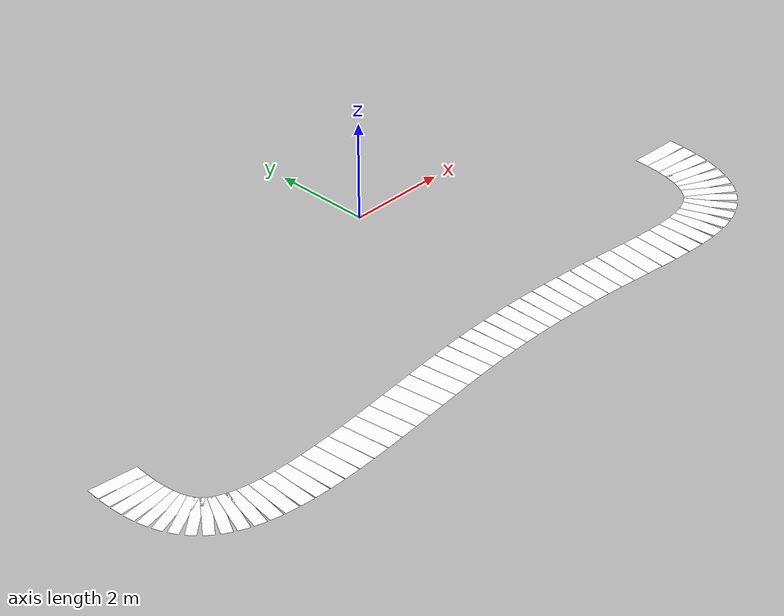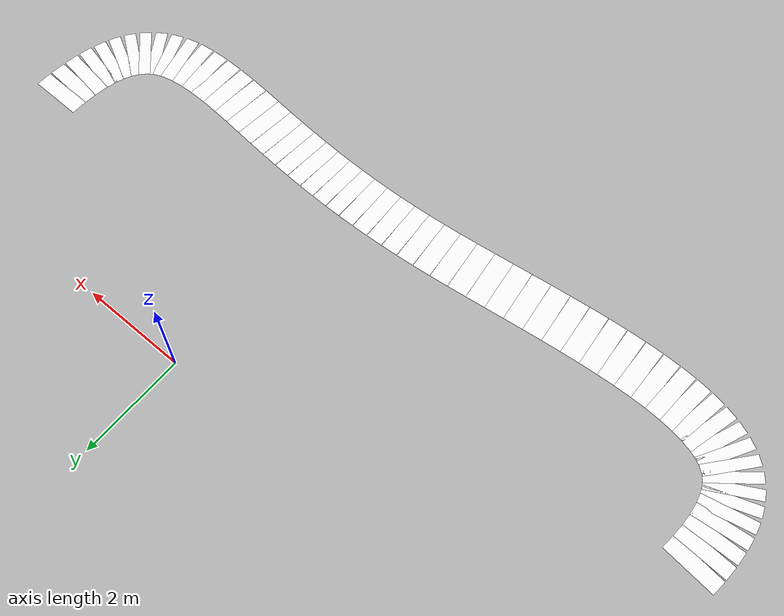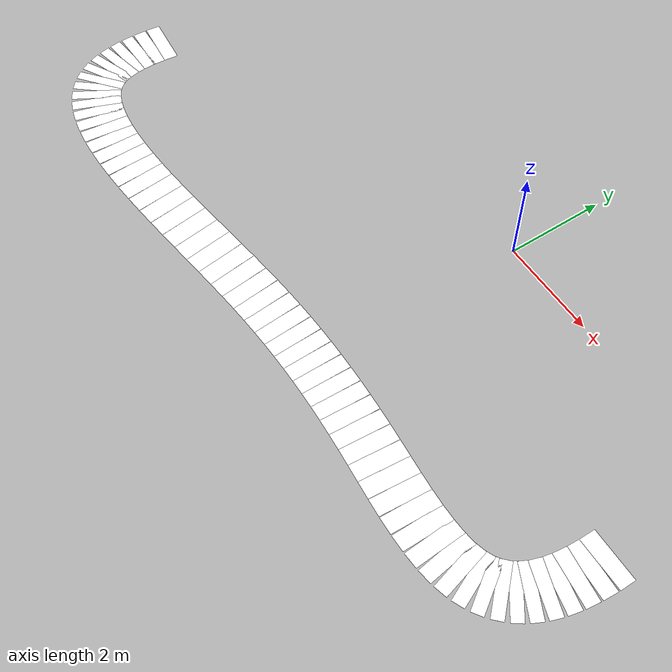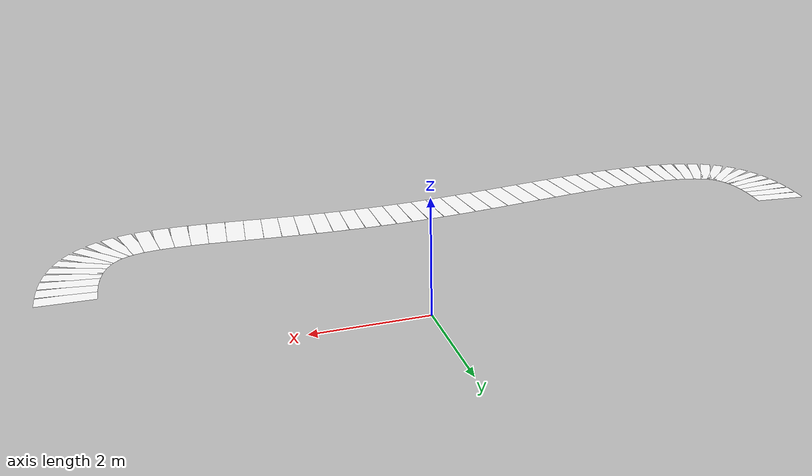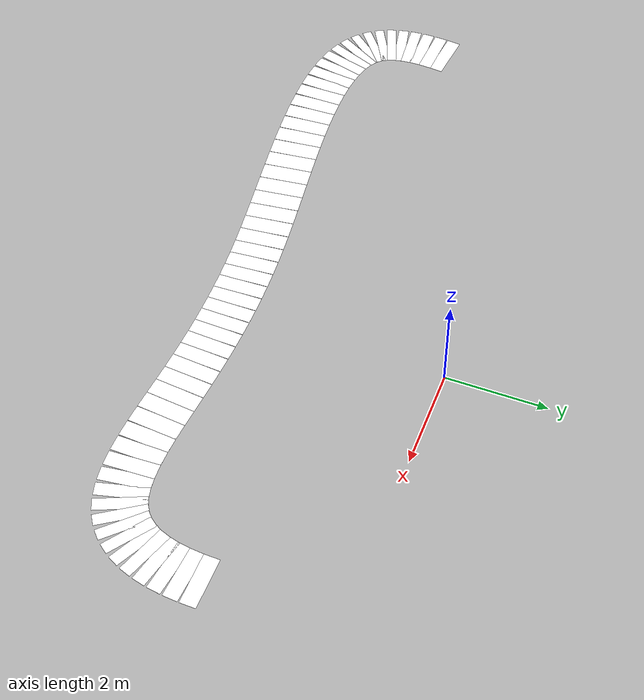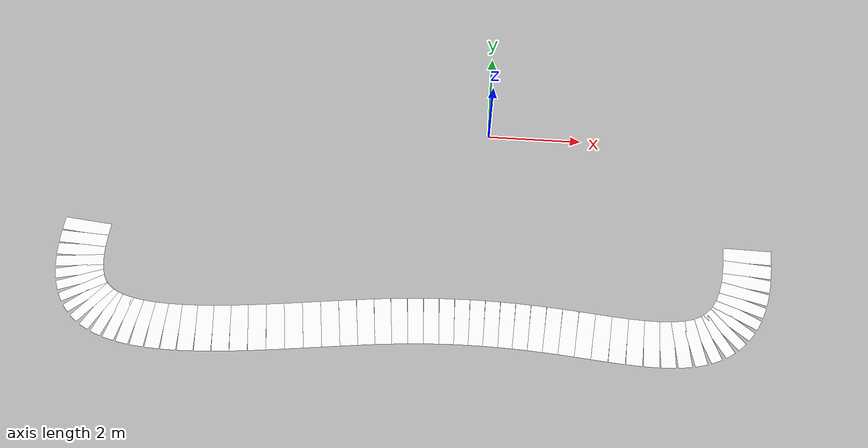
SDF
<sdf version="1.6">
 <model name="road_model">
  <model name="road_section_37">
   <static>1</static>
   <link name="road_link">
    <visual name="road_visual">
     <geometry><box><size>0.314492 1 0.0001</size></box></geometry>
     <material>
      <ambient>0.8 0.8 0.8 1</ambient>
      <diffuse>1 1 1 1</diffuse>
      <specular>0 0 0 1</specular>
      <pbr>
       <metal>
        <albedo_map>model://road_material/materials/textures/road_texture.jpg</albedo_map>
        <metalness>0</metalness>
        <roughness>0.8</roughness>
       </metal>
      </pbr>
     </material>
    </visual>
    <collision name="road_collision"><geometry><box><size>0.314492 1 0.0001</size></box></geometry></collision>
   </link>
   <pose>5.53561 -2.51377 0 0 0 -1.58711</pose>
  </model>
  <model name="road_section_38">
   <static>1</static>
   <link name="road_link">
    <visual name="road_visual">
     <geometry><box><size>0.296638 1 0.0001</size></box></geometry>
     <material>
      <ambient>0.8 0.8 0.8 1</ambient>
      <diffuse>1 1 1 1</diffuse>
      <specular>0 0 0 1</specular>
      <pbr>
       <metal>
        <albedo_map>model://road_material/materials/textures/road_texture.jpg</albedo_map>
        <metalness>0</metalness>
        <roughness>0.8</roughness>
       </metal>
      </pbr>
     </material>
    </visual>
    <collision name="road_collision"><geometry><box><size>0.296638 1 0.0001</size></box></geometry></collision>
   </link>
   <pose>5.52234 -2.81892 0 0 0 -1.64307</pose>
  </model>
  <model name="road_section_39">
   <static>1</static>
   <link name="road_link">
    <visual name="road_visual">
     <geometry><box><size>0.278683 1 0.0001</size></box></geometry>
     <material>
      <ambient>0.8 0.8 0.8 1</ambient>
      <diffuse>1 1 1 1</diffuse>
      <specular>0 0 0 1</specular>
      <pbr>
       <metal>
        <albedo_map>model://road_material/materials/textures/road_texture.jpg</albedo_map>
        <metalness>0</metalness>
        <roughness>0.8</roughness>
       </metal>
      </pbr>
     </material>
    </visual>
    <collision name="road_collision"><geometry><box><size>0.278683 1 0.0001</size></box></geometry></collision>
   </link>
   <pose>5.4918 -3.10478 0 0 0 -1.71356</pose>
  </model>
  <model name="road_section_40">
   <static>1</static>
   <link name="road_link">
    <visual name="road_visual">
     <geometry><box><size>0.261342 1 0.0001</size></box></geometry>
     <material>
      <ambient>0.8 0.8 0.8 1</ambient>
      <diffuse>1 1 1 1</diffuse>
      <specular>0 0 0 1</specular>
      <pbr>
       <metal>
        <albedo_map>model://road_material/materials/textures/road_texture.jpg</albedo_map>
        <metalness>0</metalness>
        <roughness>0.8</roughness>
       </metal>
      </pbr>
     </material>
    </visual>
    <collision name="road_collision"><geometry><box><size>0.261342 1 0.0001</size></box></geometry></collision>
   </link>
   <pose>5.44207 -3.3699 0 0 0 -1.80175</pose>
  </model>
  <model name="road_section_41">
   <static>1</static>
   <link name="road_link">
    <visual name="road_visual">
     <geometry><box><size>0.245602 1 0.0001</size></box></geometry>
     <material>
      <ambient>0.8 0.8 0.8 1</ambient>
      <diffuse>1 1 1 1</diffuse>
      <specular>0 0 0 1</specular>
      <pbr>
       <metal>
        <albedo_map>model://road_material/materials/textures/road_texture.jpg</albedo_map>
        <metalness>0</metalness>
        <roughness>0.8</roughness>
       </metal>
      </pbr>
     </material>
    </visual>
    <collision name="road_collision"><geometry><box><size>0.245602 1 0.0001</size></box></geometry></collision>
   </link>
   <pose>5.37118 -3.61287 0 0 0 -1.91095</pose>
  </model>
  <model name="road_section_42">
   <static>1</static>
   <link name="road_link">
    <visual name="road_visual">
     <geometry><box><size>0.232765 1 0.0001</size></box></geometry>
     <material>
      <ambient>0.8 0.8 0.8 1</ambient>
      <diffuse>1 1 1 1</diffuse>
      <specular>0 0 0 1</specular>
      <pbr>
       <metal>
        <albedo_map>model://road_material/materials/textures/road_texture.jpg</albedo_map>
        <metalness>0</metalness>
        <roughness>0.8</roughness>
       </metal>
      </pbr>
     </material>
    </visual>
    <collision name="road_collision"><geometry><box><size>0.232765 1 0.0001</size></box></geometry></collision>
   </link>
   <pose>5.27721 -3.83225 0 0 0 -2.04362</pose>
  </model>
  <model name="road_section_43">
   <static>1</static>
   <link name="road_link">
    <visual name="road_visual">
     <geometry><box><size>0.224424 1 0.0001</size></box></geometry>
     <material>
      <ambient>0.8 0.8 0.8 1</ambient>
      <diffuse>1 1 1 1</diffuse>
      <specular>0 0 0 1</specular>
      <pbr>
       <metal>
        <albedo_map>model://road_material/materials/textures/road_texture.jpg</albedo_map>
        <metalness>0</metalness>
        <roughness>0.8</roughness>
       </metal>
      </pbr>
     </material>
    </visual>
    <collision name="road_collision"><geometry><box><size>0.224424 1 0.0001</size></box></geometry></collision>
   </link>
   <pose>5.15821 -4.02661 0 0 0 -2.19962</pose>
  </model>
  <model name="road_section_44">
   <static>1</static>
   <link name="road_link">
    <visual name="road_visual">
     <geometry><box><size>0.22227 1 0.0001</size></box></geometry>
     <material>
      <ambient>0.8 0.8 0.8 1</ambient>
      <diffuse>1 1 1 1</diffuse>
      <specular>0 0 0 1</specular>
      <pbr>
       <metal>
        <albedo_map>model://road_material/materials/textures/road_texture.jpg</albedo_map>
        <metalness>0</metalness>
        <roughness>0.8</roughness>
       </metal>
      </pbr>
     </material>
    </visual>
    <collision name="road_collision"><geometry><box><size>0.22227 1 0.0001</size></box></geometry></collision>
   </link>
   <pose>5.01223 -4.19453 0 0 0 -2.37406</pose>
  </model>
  <model name="road_section_45">
   <static>1</static>
   <link name="road_link">
    <visual name="road_visual">
     <geometry><box><size>0.22771 1 0.0001</size></box></geometry>
     <material>
      <ambient>0.8 0.8 0.8 1</ambient>
      <diffuse>1 1 1 1</diffuse>
      <specular>0 0 0 1</specular>
      <pbr>
       <metal>
        <albedo_map>model://road_material/materials/textures/road_texture.jpg</albedo_map>
        <metalness>0</metalness>
        <roughness>0.8</roughness>
       </metal>
      </pbr>
     </material>
    </visual>
    <collision name="road_collision"><geometry><box><size>0.22771 1 0.0001</size></box></geometry></collision>
   </link>
   <pose>4.83734 -4.33457 0 0 0 -2.55656</pose>
  </model>
  <model name="road_section_46">
   <static>1</static>
   <link name="road_link">
    <visual name="road_visual">
     <geometry><box><size>0.241461 1 0.0001</size></box></geometry>
     <material>
      <ambient>0.8 0.8 0.8 1</ambient>
      <diffuse>1 1 1 1</diffuse>
      <specular>0 0 0 1</specular>
      <pbr>
       <metal>
        <albedo_map>model://road_material/materials/textures/road_texture.jpg</albedo_map>
        <metalness>0</metalness>
        <roughness>0.8</roughness>
       </metal>
      </pbr>
     </material>
    </visual>
    <collision name="road_collision"><geometry><box><size>0.241461 1 0.0001</size></box></geometry></collision>
   </link>
   <pose>4.63158 -4.44531 0 0 0 -2.73393</pose>
  </model>
  <model name="road_section_47">
   <static>1</static>
   <link name="road_link">
    <visual name="road_visual">
     <geometry><box><size>0.262674 1 0.0001</size></box></geometry>
     <material>
      <ambient>0.8 0.8 0.8 1</ambient>
      <diffuse>1 1 1 1</diffuse>
      <specular>0 0 0 1</specular>
      <pbr>
       <metal>
        <albedo_map>model://road_material/materials/textures/road_texture.jpg</albedo_map>
        <metalness>0</metalness>
        <roughness>0.8</roughness>
       </metal>
      </pbr>
     </material>
    </visual>
    <collision name="road_collision"><geometry><box><size>0.262674 1 0.0001</size></box></geometry></collision>
   </link>
   <pose>4.3935 -4.52569 0 0 0 -2.89138</pose>
  </model>
  <model name="road_section_48">
   <static>1</static>
   <link name="road_link">
    <visual name="road_visual">
     <geometry><box><size>0.285824 1 0.0001</size></box></geometry>
     <material>
      <ambient>0.8 0.8 0.8 1</ambient>
      <diffuse>1 1 1 1</diffuse>
      <specular>0 0 0 1</specular>
      <pbr>
       <metal>
        <albedo_map>model://road_material/materials/textures/road_texture.jpg</albedo_map>
        <metalness>0</metalness>
        <roughness>0.8</roughness>
       </metal>
      </pbr>
     </material>
    </visual>
    <collision name="road_collision"><geometry><box><size>0.285824 1 0.0001</size></box></geometry></collision>
   </link>
   <pose>4.12458 -4.57702 0 0 0 -3.00963</pose>
  </model>
  <model name="road_section_49">
   <static>1</static>
   <link name="road_link">
    <visual name="road_visual">
     <geometry><box><size>0.306955 1 0.0001</size></box></geometry>
     <material>
      <ambient>0.8 0.8 0.8 1</ambient>
      <diffuse>1 1 1 1</diffuse>
      <specular>0 0 0 1</specular>
      <pbr>
       <metal>
        <albedo_map>model://road_material/materials/textures/road_texture.jpg</albedo_map>
        <metalness>0</metalness>
        <roughness>0.8</roughness>
       </metal>
      </pbr>
     </material>
    </visual>
    <collision name="road_collision"><geometry><box><size>0.306955 1 0.0001</size></box></geometry></collision>
   </link>
   <pose>3.82961 -4.60318 0 0 0 -3.09366</pose>
  </model>
  <model name="road_section_50">
   <static>1</static>
   <link name="road_link">
    <visual name="road_visual">
     <geometry><box><size>0.324306 1 0.0001</size></box></geometry>
     <material>
      <ambient>0.8 0.8 0.8 1</ambient>
      <diffuse>1 1 1 1</diffuse>
      <specular>0 0 0 1</specular>
      <pbr>
       <metal>
        <albedo_map>model://road_material/materials/textures/road_texture.jpg</albedo_map>
        <metalness>0</metalness>
        <roughness>0.8</roughness>
       </metal>
      </pbr>
     </material>
    </visual>
    <collision name="road_collision"><geometry><box><size>0.324306 1 0.0001</size></box></geometry></collision>
   </link>
   <pose>3.51417 -4.6087 0 0 -0 3.13029</pose>
  </model>
  <model name="road_section_51">
   <static>1</static>
   <link name="road_link">
    <visual name="road_visual">
     <geometry><box><size>0.336842 1 0.0001</size></box></geometry>
     <material>
      <ambient>0.8 0.8 0.8 1</ambient>
      <diffuse>1 1 1 1</diffuse>
      <specular>0 0 0 1</specular>
      <pbr>
       <metal>
        <albedo_map>model://road_material/materials/textures/road_texture.jpg</albedo_map>
        <metalness>0</metalness>
        <roughness>0.8</roughness>
       </metal>
      </pbr>
     </material>
    </visual>
    <collision name="road_collision"><geometry><box><size>0.336842 1 0.0001</size></box></geometry></collision>
   </link>
   <pose>3.18383 -4.59811 0 0 -0 3.08959</pose>
  </model>
  <model name="road_section_52">
   <static>1</static>
   <link name="road_link">
    <visual name="road_visual">
     <geometry><box><size>0.343953 1 0.0001</size></box></geometry>
     <material>
      <ambient>0.8 0.8 0.8 1</ambient>
      <diffuse>1 1 1 1</diffuse>
      <specular>0 0 0 1</specular>
      <pbr>
       <metal>
        <albedo_map>model://road_material/materials/textures/road_texture.jpg</albedo_map>
        <metalness>0</metalness>
        <roughness>0.8</roughness>
       </metal>
      </pbr>
     </material>
    </visual>
    <collision name="road_collision"><geometry><box><size>0.343953 1 0.0001</size></box></geometry></collision>
   </link>
   <pose>2.84418 -4.57594 0 0 -0 3.06353</pose>
  </model>
  <model name="road_section_53">
   <static>1</static>
   <link name="road_link">
    <visual name="road_visual">
     <geometry><box><size>0.345293 1 0.0001</size></box></geometry>
     <material>
      <ambient>0.8 0.8 0.8 1</ambient>
      <diffuse>1 1 1 1</diffuse>
      <specular>0 0 0 1</specular>
      <pbr>
       <metal>
        <albedo_map>model://road_material/materials/textures/road_texture.jpg</albedo_map>
        <metalness>0</metalness>
        <roughness>0.8</roughness>
       </metal>
      </pbr>
     </material>
    </visual>
    <collision name="road_collision"><geometry><box><size>0.345293 1 0.0001</size></box></geometry></collision>
   </link>
   <pose>2.50081 -4.54673 0 0 -0 3.04992</pose>
  </model>
  <model name="road_section_54">
   <static>1</static>
   <link name="road_link">
    <visual name="road_visual">
     <geometry><box><size>0.340693 1 0.0001</size></box></geometry>
     <material>
      <ambient>0.8 0.8 0.8 1</ambient>
      <diffuse>1 1 1 1</diffuse>
      <specular>0 0 0 1</specular>
      <pbr>
       <metal>
        <albedo_map>model://road_material/materials/textures/road_texture.jpg</albedo_map>
        <metalness>0</metalness>
        <roughness>0.8</roughness>
       </metal>
      </pbr>
     </material>
    </visual>
    <collision name="road_collision"><geometry><box><size>0.340693 1 0.0001</size></box></geometry></collision>
   </link>
   <pose>2.15929 -4.51499 0 0 -0 3.04793</pose>
  </model>
  <model name="road_section_55">
   <static>1</static>
   <link name="road_link">
    <visual name="road_visual">
     <geometry><box><size>0.331522 1 0.0001</size></box></geometry>
     <material>
      <ambient>0.8 0.8 0.8 1</ambient>
      <diffuse>1 1 1 1</diffuse>
      <specular>0 0 0 1</specular>
      <pbr>
       <metal>
        <albedo_map>model://road_material/materials/textures/road_texture.jpg</albedo_map>
        <metalness>0</metalness>
        <roughness>0.8</roughness>
       </metal>
      </pbr>
     </material>
    </visual>
    <collision name="road_collision"><geometry><box><size>0.331522 1 0.0001</size></box></geometry></collision>
   </link>
   <pose>1.82453 -4.48487 0 0 -0 3.05587</pose>
  </model>
  <model name="road_section_56">
   <static>1</static>
   <link name="road_link">
    <visual name="road_visual">
     <geometry><box><size>0.322907 1 0.0001</size></box></geometry>
     <material>
      <ambient>0.8 0.8 0.8 1</ambient>
      <diffuse>1 1 1 1</diffuse>
      <specular>0 0 0 1</specular>
      <pbr>
       <metal>
        <albedo_map>model://road_material/materials/textures/road_texture.jpg</albedo_map>
        <metalness>0</metalness>
        <roughness>0.8</roughness>
       </metal>
      </pbr>
     </material>
    </visual>
    <collision name="road_collision"><geometry><box><size>0.322907 1 0.0001</size></box></geometry></collision>
   </link>
   <pose>1.49838 -4.45864 0 0 -0 3.06697</pose>
  </model>
  <model name="road_section_57">
   <static>1</static>
   <link name="road_link">
    <visual name="road_visual">
     <geometry><box><size>0.316027 1 0.0001</size></box></geometry>
     <material>
      <ambient>0.8 0.8 0.8 1</ambient>
      <diffuse>1 1 1 1</diffuse>
      <specular>0 0 0 1</specular>
      <pbr>
       <metal>
        <albedo_map>model://road_material/materials/textures/road_texture.jpg</albedo_map>
        <metalness>0</metalness>
        <roughness>0.8</roughness>
       </metal>
      </pbr>
     </material>
    </visual>
    <collision name="road_collision"><geometry><box><size>0.316027 1 0.0001</size></box></geometry></collision>
   </link>
   <pose>1.17966 -4.43681 0 0 -0 3.07956</pose>
  </model>
  <model name="road_section_58">
   <static>1</static>
   <link name="road_link">
    <visual name="road_visual">
     <geometry><box><size>0.310894 1 0.0001</size></box></geometry>
     <material>
      <ambient>0.8 0.8 0.8 1</ambient>
      <diffuse>1 1 1 1</diffuse>
      <specular>0 0 0 1</specular>
      <pbr>
       <metal>
        <albedo_map>model://road_material/materials/textures/road_texture.jpg</albedo_map>
        <metalness>0</metalness>
        <roughness>0.8</roughness>
       </metal>
      </pbr>
     </material>
    </visual>
    <collision name="road_collision"><geometry><box><size>0.310894 1 0.0001</size></box></geometry></collision>
   </link>
   <pose>0.866687 -4.41955 0 0 -0 3.09353</pose>
  </model>
  <model name="road_section_59">
   <static>1</static>
   <link name="road_link">
    <visual name="road_visual">
     <geometry><box><size>0.307523 1 0.0001</size></box></geometry>
     <material>
      <ambient>0.8 0.8 0.8 1</ambient>
      <diffuse>1 1 1 1</diffuse>
      <specular>0 0 0 1</specular>
      <pbr>
       <metal>
        <albedo_map>model://road_material/materials/textures/road_texture.jpg</albedo_map>
        <metalness>0</metalness>
        <roughness>0.8</roughness>
       </metal>
      </pbr>
     </material>
    </visual>
    <collision name="road_collision"><geometry><box><size>0.307523 1 0.0001</size></box></geometry></collision>
   </link>
   <pose>0.557741 -4.40702 0 0 -0 3.1087</pose>
  </model>
  <model name="road_section_60">
   <static>1</static>
   <link name="road_link">
    <visual name="road_visual">
     <geometry><box><size>0.305927 1 0.0001</size></box></geometry>
     <material>
      <ambient>0.8 0.8 0.8 1</ambient>
      <diffuse>1 1 1 1</diffuse>
      <specular>0 0 0 1</specular>
      <pbr>
       <metal>
        <albedo_map>model://road_material/materials/textures/road_texture.jpg</albedo_map>
        <metalness>0</metalness>
        <roughness>0.8</roughness>
       </metal>
      </pbr>
     </material>
    </visual>
    <collision name="road_collision"><geometry><box><size>0.305927 1 0.0001</size></box></geometry></collision>
   </link>
   <pose>0.251121 -4.39941 0 0 -0 3.12487</pose>
  </model>
  <model name="road_section_61">
   <static>1</static>
   <link name="road_link">
    <visual name="road_visual">
     <geometry><box><size>0.306117 1 0.0001</size></box></geometry>
     <material>
      <ambient>0.8 0.8 0.8 1</ambient>
      <diffuse>1 1 1 1</diffuse>
      <specular>0 0 0 1</specular>
      <pbr>
       <metal>
        <albedo_map>model://road_material/materials/textures/road_texture.jpg</albedo_map>
        <metalness>0</metalness>
        <roughness>0.8</roughness>
       </metal>
      </pbr>
     </material>
    </visual>
    <collision name="road_collision"><geometry><box><size>0.306117 1 0.0001</size></box></geometry></collision>
   </link>
   <pose>-0.05488 -4.39687 0 0 0 -3.14143</pose>
  </model>
  <model name="road_section_62">
   <static>1</static>
   <link name="road_link">
    <visual name="road_visual">
     <geometry><box><size>0.308103 1 0.0001</size></box></geometry>
     <material>
      <ambient>0.8 0.8 0.8 1</ambient>
      <diffuse>1 1 1 1</diffuse>
      <specular>0 0 0 1</specular>
      <pbr>
       <metal>
        <albedo_map>model://road_material/materials/textures/road_texture.jpg</albedo_map>
        <metalness>0</metalness>
        <roughness>0.8</roughness>
       </metal>
      </pbr>
     </material>
    </visual>
    <collision name="road_collision"><geometry><box><size>0.308103 1 0.0001</size></box></geometry></collision>
   </link>
   <pose>-0.361966 -4.39959 0 0 0 -3.12411</pose>
  </model>
  <model name="road_section_63">
   <static>1</static>
   <link name="road_link">
    <visual name="road_visual">
     <geometry><box><size>0.311891 1 0.0001</size></box></geometry>
     <material>
      <ambient>0.8 0.8 0.8 1</ambient>
      <diffuse>1 1 1 1</diffuse>
      <specular>0 0 0 1</specular>
      <pbr>
       <metal>
        <albedo_map>model://road_material/materials/textures/road_texture.jpg</albedo_map>
        <metalness>0</metalness>
        <roughness>0.8</roughness>
       </metal>
      </pbr>
     </material>
    </visual>
    <collision name="road_collision"><geometry><box><size>0.311891 1 0.0001</size></box></geometry></collision>
   </link>
   <pose>-0.671845 -4.40773 0 0 0 -3.10665</pose>
  </model>
  <model name="road_section_64">
   <static>1</static>
   <link name="road_link">
    <visual name="road_visual">
     <geometry><box><size>0.317484 1 0.0001</size></box></geometry>
     <material>
      <ambient>0.8 0.8 0.8 1</ambient>
      <diffuse>1 1 1 1</diffuse>
      <specular>0 0 0 1</specular>
      <pbr>
       <metal>
        <albedo_map>model://road_material/materials/textures/road_texture.jpg</albedo_map>
        <metalness>0</metalness>
        <roughness>0.8</roughness>
       </metal>
      </pbr>
     </material>
    </visual>
    <collision name="road_collision"><geometry><box><size>0.317484 1 0.0001</size></box></geometry></collision>
   </link>
   <pose>-0.98622 -4.42147 0 0 0 -3.08936</pose>
  </model>
  <model name="road_section_65">
   <static>1</static>
   <link name="road_link">
    <visual name="road_visual">
     <geometry><box><size>0.324881 1 0.0001</size></box></geometry>
     <material>
      <ambient>0.8 0.8 0.8 1</ambient>
      <diffuse>1 1 1 1</diffuse>
      <specular>0 0 0 1</specular>
      <pbr>
       <metal>
        <albedo_map>model://road_material/materials/textures/road_texture.jpg</albedo_map>
        <metalness>0</metalness>
        <roughness>0.8</roughness>
       </metal>
      </pbr>
     </material>
    </visual>
    <collision name="road_collision"><geometry><box><size>0.324881 1 0.0001</size></box></geometry></collision>
   </link>
   <pose>-1.3068 -4.44096 0 0 0 -3.07252</pose>
  </model>
  <model name="road_section_66">
   <static>1</static>
   <link name="road_link">
    <visual name="road_visual">
     <geometry><box><size>0.334081 1 0.0001</size></box></geometry>
     <material>
      <ambient>0.8 0.8 0.8 1</ambient>
      <diffuse>1 1 1 1</diffuse>
      <specular>0 0 0 1</specular>
      <pbr>
       <metal>
        <albedo_map>model://road_material/materials/textures/road_texture.jpg</albedo_map>
        <metalness>0</metalness>
        <roughness>0.8</roughness>
       </metal>
      </pbr>
     </material>
    </visual>
    <collision name="road_collision"><geometry><box><size>0.334081 1 0.0001</size></box></geometry></collision>
   </link>
   <pose>-1.63529 -4.4664 0 0 0 -3.05635</pose>
  </model>
  <model name="road_section_67">
   <static>1</static>
   <link name="road_link">
    <visual name="road_visual">
     <geometry><box><size>0.345028 1 0.0001</size></box></geometry>
     <material>
      <ambient>0.8 0.8 0.8 1</ambient>
      <diffuse>1 1 1 1</diffuse>
      <specular>0 0 0 1</specular>
      <pbr>
       <metal>
        <albedo_map>model://road_material/materials/textures/road_texture.jpg</albedo_map>
        <metalness>0</metalness>
        <roughness>0.8</roughness>
       </metal>
      </pbr>
     </material>
    </visual>
    <collision name="road_collision"><geometry><box><size>0.345028 1 0.0001</size></box></geometry></collision>
   </link>
   <pose>-1.97336 -4.49793 0 0 0 -3.0411</pose>
  </model>
  <model name="road_section_68">
   <static>1</static>
   <link name="road_link">
    <visual name="road_visual">
     <geometry><box><size>0.355941 1 0.0001</size></box></geometry>
     <material>
      <ambient>0.8 0.8 0.8 1</ambient>
      <diffuse>1 1 1 1</diffuse>
      <specular>0 0 0 1</specular>
      <pbr>
       <metal>
        <albedo_map>model://road_material/materials/textures/road_texture.jpg</albedo_map>
        <metalness>0</metalness>
        <roughness>0.8</roughness>
       </metal>
      </pbr>
     </material>
    </visual>
    <collision name="road_collision"><geometry><box><size>0.355941 1 0.0001</size></box></geometry></collision>
   </link>
   <pose>-2.32184 -4.53533 0 0 0 -3.02845</pose>
  </model>
  <model name="road_section_69">
   <static>1</static>
   <link name="road_link">
    <visual name="road_visual">
     <geometry><box><size>0.364597 1 0.0001</size></box></geometry>
     <material>
      <ambient>0.8 0.8 0.8 1</ambient>
      <diffuse>1 1 1 1</diffuse>
      <specular>0 0 0 1</specular>
      <pbr>
       <metal>
        <albedo_map>model://road_material/materials/textures/road_texture.jpg</albedo_map>
        <metalness>0</metalness>
        <roughness>0.8</roughness>
       </metal>
      </pbr>
     </material>
    </visual>
    <collision name="road_collision"><geometry><box><size>0.364597 1 0.0001</size></box></geometry></collision>
   </link>
   <pose>-2.67962 -4.57754 0 0 0 -3.01999</pose>
  </model>
  <model name="road_section_70">
   <static>1</static>
   <link name="road_link">
    <visual name="road_visual">
     <geometry><box><size>0.370822 1 0.0001</size></box></geometry>
     <material>
      <ambient>0.8 0.8 0.8 1</ambient>
      <diffuse>1 1 1 1</diffuse>
      <specular>0 0 0 1</specular>
      <pbr>
       <metal>
        <albedo_map>model://road_material/materials/textures/road_texture.jpg</albedo_map>
        <metalness>0</metalness>
        <roughness>0.8</roughness>
       </metal>
      </pbr>
     </material>
    </visual>
    <collision name="road_collision"><geometry><box><size>0.370822 1 0.0001</size></box></geometry></collision>
   </link>
   <pose>-3.04451 -4.62299 0 0 0 -3.01538</pose>
  </model>
  <model name="road_section_71">
   <static>1</static>
   <link name="road_link">
    <visual name="road_visual">
     <geometry><box><size>0.3746 1 0.0001</size></box></geometry>
     <material>
      <ambient>0.8 0.8 0.8 1</ambient>
      <diffuse>1 1 1 1</diffuse>
      <specular>0 0 0 1</specular>
      <pbr>
       <metal>
        <albedo_map>model://road_material/materials/textures/road_texture.jpg</albedo_map>
        <metalness>0</metalness>
        <roughness>0.8</roughness>
       </metal>
      </pbr>
     </material>
    </visual>
    <collision name="road_collision"><geometry><box><size>0.3746 1 0.0001</size></box></geometry></collision>
   </link>
   <pose>-3.41423 -4.6701 0 0 0 -3.01432</pose>
  </model>
  <model name="road_section_72">
   <static>1</static>
   <link name="road_link">
    <visual name="road_visual">
     <geometry><box><size>0.375925 1 0.0001</size></box></geometry>
     <material>
      <ambient>0.8 0.8 0.8 1</ambient>
      <diffuse>1 1 1 1</diffuse>
      <specular>0 0 0 1</specular>
      <pbr>
       <metal>
        <albedo_map>model://road_material/materials/textures/road_texture.jpg</albedo_map>
        <metalness>0</metalness>
        <roughness>0.8</roughness>
       </metal>
      </pbr>
     </material>
    </visual>
    <collision name="road_collision"><geometry><box><size>0.375925 1 0.0001</size></box></geometry></collision>
   </link>
   <pose>-3.78652 -4.71729 0 0 0 -3.0167</pose>
  </model>
  <model name="road_section_73">
   <static>1</static>
   <link name="road_link">
    <visual name="road_visual">
     <geometry><box><size>0.374807 1 0.0001</size></box></geometry>
     <material>
      <ambient>0.8 0.8 0.8 1</ambient>
      <diffuse>1 1 1 1</diffuse>
      <specular>0 0 0 1</specular>
      <pbr>
       <metal>
        <albedo_map>model://road_material/materials/textures/road_texture.jpg</albedo_map>
        <metalness>0</metalness>
        <roughness>0.8</roughness>
       </metal>
      </pbr>
     </material>
    </visual>
    <collision name="road_collision"><geometry><box><size>0.374807 1 0.0001</size></box></geometry></collision>
   </link>
   <pose>-4.15909 -4.76296 0 0 0 -3.02253</pose>
  </model>
  <model name="road_section_74">
   <static>1</static>
   <link name="road_link">
    <visual name="road_visual">
     <geometry><box><size>0.37127 1 0.0001</size></box></geometry>
     <material>
      <ambient>0.8 0.8 0.8 1</ambient>
      <diffuse>1 1 1 1</diffuse>
      <specular>0 0 0 1</specular>
      <pbr>
       <metal>
        <albedo_map>model://road_material/materials/textures/road_texture.jpg</albedo_map>
        <metalness>0</metalness>
        <roughness>0.8</roughness>
       </metal>
      </pbr>
     </material>
    </visual>
    <collision name="road_collision"><geometry><box><size>0.37127 1 0.0001</size></box></geometry></collision>
   </link>
   <pose>-4.52969 -4.80553 0 0 0 -3.03195</pose>
  </model>
  <model name="road_section_75">
   <static>1</static>
   <link name="road_link">
    <visual name="road_visual">
     <geometry><box><size>0.36535 1 0.0001</size></box></geometry>
     <material>
      <ambient>0.8 0.8 0.8 1</ambient>
      <diffuse>1 1 1 1</diffuse>
      <specular>0 0 0 1</specular>
      <pbr>
       <metal>
        <albedo_map>model://road_material/materials/textures/road_texture.jpg</albedo_map>
        <metalness>0</metalness>
        <roughness>0.8</roughness>
       </metal>
      </pbr>
     </material>
    </visual>
    <collision name="road_collision"><geometry><box><size>0.36535 1 0.0001</size></box></geometry></collision>
   </link>
   <pose>-4.89604 -4.84342 0 0 0 -3.04524</pose>
  </model>
  <model name="road_section_76">
   <static>1</static>
   <link name="road_link">
    <visual name="road_visual">
     <geometry><box><size>0.357107 1 0.0001</size></box></geometry>
     <material>
      <ambient>0.8 0.8 0.8 1</ambient>
      <diffuse>1 1 1 1</diffuse>
      <specular>0 0 0 1</specular>
      <pbr>
       <metal>
        <albedo_map>model://road_material/materials/textures/road_texture.jpg</albedo_map>
        <metalness>0</metalness>
        <roughness>0.8</roughness>
       </metal>
      </pbr>
     </material>
    </visual>
    <collision name="road_collision"><geometry><box><size>0.357107 1 0.0001</size></box></geometry></collision>
   </link>
   <pose>-5.25587 -4.87503 0 0 0 -3.06288</pose>
  </model>
  <model name="road_section_77">
   <static>1</static>
   <link name="road_link">
    <visual name="road_visual">
     <geometry><box><size>0.34662 1 0.0001</size></box></geometry>
     <material>
      <ambient>0.8 0.8 0.8 1</ambient>
      <diffuse>1 1 1 1</diffuse>
      <specular>0 0 0 1</specular>
      <pbr>
       <metal>
        <albedo_map>model://road_material/materials/textures/road_texture.jpg</albedo_map>
        <metalness>0</metalness>
        <roughness>0.8</roughness>
       </metal>
      </pbr>
     </material>
    </visual>
    <collision name="road_collision"><geometry><box><size>0.34662 1 0.0001</size></box></geometry></collision>
   </link>
   <pose>-5.60691 -4.89879 0 0 0 -3.08552</pose>
  </model>
  <model name="road_section_78">
   <static>1</static>
   <link name="road_link">
    <visual name="road_visual">
     <geometry><box><size>0.334006 1 0.0001</size></box></geometry>
     <material>
      <ambient>0.8 0.8 0.8 1</ambient>
      <diffuse>1 1 1 1</diffuse>
      <specular>0 0 0 1</specular>
      <pbr>
       <metal>
        <albedo_map>model://road_material/materials/textures/road_texture.jpg</albedo_map>
        <metalness>0</metalness>
        <roughness>0.8</roughness>
       </metal>
      </pbr>
     </material>
    </visual>
    <collision name="road_collision"><geometry><box><size>0.334006 1 0.0001</size></box></geometry></collision>
   </link>
   <pose>-5.94688 -4.91309 0 0 0 -3.11409</pose>
  </model>
  <model name="road_section_79">
   <static>1</static>
   <link name="road_link">
    <visual name="road_visual">
     <geometry><box><size>0.319424 1 0.0001</size></box></geometry>
     <material>
      <ambient>0.8 0.8 0.8 1</ambient>
      <diffuse>1 1 1 1</diffuse>
      <specular>0 0 0 1</specular>
      <pbr>
       <metal>
        <albedo_map>model://road_material/materials/textures/road_texture.jpg</albedo_map>
        <metalness>0</metalness>
        <roughness>0.8</roughness>
       </metal>
      </pbr>
     </material>
    </visual>
    <collision name="road_collision"><geometry><box><size>0.319424 1 0.0001</size></box></geometry></collision>
   </link>
   <pose>-6.27353 -4.91637 0 0 -0 3.13332</pose>
  </model>
  <model name="road_section_80">
   <static>1</static>
   <link name="road_link">
    <visual name="road_visual">
     <geometry><box><size>0.303102 1 0.0001</size></box></geometry>
     <material>
      <ambient>0.8 0.8 0.8 1</ambient>
      <diffuse>1 1 1 1</diffuse>
      <specular>0 0 0 1</specular>
      <pbr>
       <metal>
        <albedo_map>model://road_material/materials/textures/road_texture.jpg</albedo_map>
        <metalness>0</metalness>
        <roughness>0.8</roughness>
       </metal>
      </pbr>
     </material>
    </visual>
    <collision name="road_collision"><geometry><box><size>0.303102 1 0.0001</size></box></geometry></collision>
   </link>
   <pose>-6.58457 -4.90702 0 0 -0 3.0886</pose>
  </model>
  <model name="road_section_81">
   <static>1</static>
   <link name="road_link">
    <visual name="road_visual">
     <geometry><box><size>0.285364 1 0.0001</size></box></geometry>
     <material>
      <ambient>0.8 0.8 0.8 1</ambient>
      <diffuse>1 1 1 1</diffuse>
      <specular>0 0 0 1</specular>
      <pbr>
       <metal>
        <albedo_map>model://road_material/materials/textures/road_texture.jpg</albedo_map>
        <metalness>0</metalness>
        <roughness>0.8</roughness>
       </metal>
      </pbr>
     </material>
    </visual>
    <collision name="road_collision"><geometry><box><size>0.285364 1 0.0001</size></box></geometry></collision>
   </link>
   <pose>-6.87775 -4.88346 0 0 -0 3.03255</pose>
  </model>
  <model name="road_section_82">
   <static>1</static>
   <link name="road_link">
    <visual name="road_visual">
     <geometry><box><size>0.266682 1 0.0001</size></box></geometry>
     <material>
      <ambient>0.8 0.8 0.8 1</ambient>
      <diffuse>1 1 1 1</diffuse>
      <specular>0 0 0 1</specular>
      <pbr>
       <metal>
        <albedo_map>model://road_material/materials/textures/road_texture.jpg</albedo_map>
        <metalness>0</metalness>
        <roughness>0.8</roughness>
       </metal>
      </pbr>
     </material>
    </visual>
    <collision name="road_collision"><geometry><box><size>0.266682 1 0.0001</size></box></geometry></collision>
   </link>
   <pose>-7.15078 -4.84411 0 0 -0 2.96197</pose>
  </model>
  <model name="road_section_83">
   <static>1</static>
   <link name="road_link">
    <visual name="road_visual">
     <geometry><box><size>0.247746 1 0.0001</size></box></geometry>
     <material>
      <ambient>0.8 0.8 0.8 1</ambient>
      <diffuse>1 1 1 1</diffuse>
      <specular>0 0 0 1</specular>
      <pbr>
       <metal>
        <albedo_map>model://road_material/materials/textures/road_texture.jpg</albedo_map>
        <metalness>0</metalness>
        <roughness>0.8</roughness>
       </metal>
      </pbr>
     </material>
    </visual>
    <collision name="road_collision"><geometry><box><size>0.247746 1 0.0001</size></box></geometry></collision>
   </link>
   <pose>-7.40139 -4.78738 0 0 -0 2.8727</pose>
  </model>
  <model name="road_section_84">
   <static>1</static>
   <link name="road_link">
    <visual name="road_visual">
     <geometry><box><size>0.229572 1 0.0001</size></box></geometry>
     <material>
      <ambient>0.8 0.8 0.8 1</ambient>
      <diffuse>1 1 1 1</diffuse>
      <specular>0 0 0 1</specular>
      <pbr>
       <metal>
        <albedo_map>model://road_material/materials/textures/road_texture.jpg</albedo_map>
        <metalness>0</metalness>
        <roughness>0.8</roughness>
       </metal>
      </pbr>
     </material>
    </visual>
    <collision name="road_collision"><geometry><box><size>0.229572 1 0.0001</size></box></geometry></collision>
   </link>
   <pose>-7.62733 -4.71168 0 0 -0 2.75959</pose>
  </model>
  <model name="road_section_85">
   <static>1</static>
   <link name="road_link">
    <visual name="road_visual">
     <geometry><box><size>0.213622 1 0.0001</size></box></geometry>
     <material>
      <ambient>0.8 0.8 0.8 1</ambient>
      <diffuse>1 1 1 1</diffuse>
      <specular>0 0 0 1</specular>
      <pbr>
       <metal>
        <albedo_map>model://road_material/materials/textures/road_texture.jpg</albedo_map>
        <metalness>0</metalness>
        <roughness>0.8</roughness>
       </metal>
      </pbr>
     </material>
    </visual>
    <collision name="road_collision"><geometry><box><size>0.213622 1 0.0001</size></box></geometry></collision>
   </link>
   <pose>-7.82631 -4.61543 0 0 -0 2.61737</pose>
  </model>
  <model name="road_section_86">
   <static>1</static>
   <link name="road_link">
    <visual name="road_visual">
     <geometry><box><size>0.20192 1 0.0001</size></box></geometry>
     <material>
      <ambient>0.8 0.8 0.8 1</ambient>
      <diffuse>1 1 1 1</diffuse>
      <specular>0 0 0 1</specular>
      <pbr>
       <metal>
        <albedo_map>model://road_material/materials/textures/road_texture.jpg</albedo_map>
        <metalness>0</metalness>
        <roughness>0.8</roughness>
       </metal>
      </pbr>
     </material>
    </visual>
    <collision name="road_collision"><geometry><box><size>0.20192 1 0.0001</size></box></geometry></collision>
   </link>
   <pose>-7.99611 -4.49706 0 0 -0 2.44336</pose>
  </model>
  <model name="road_section_87">
   <static>1</static>
   <link name="road_link">
    <visual name="road_visual">
     <geometry><box><size>0.197127 1 0.0001</size></box></geometry>
     <material>
      <ambient>0.8 0.8 0.8 1</ambient>
      <diffuse>1 1 1 1</diffuse>
      <specular>0 0 0 1</specular>
      <pbr>
       <metal>
        <albedo_map>model://road_material/materials/textures/road_texture.jpg</albedo_map>
        <metalness>0</metalness>
        <roughness>0.8</roughness>
       </metal>
      </pbr>
     </material>
    </visual>
    <collision name="road_collision"><geometry><box><size>0.197127 1 0.0001</size></box></geometry></collision>
   </link>
   <pose>-8.1356 -4.35566 0 0 -0 2.25318</pose>
  </model>
  <model name="road_section_88">
   <static>1</static>
   <link name="road_link">
    <visual name="road_visual">
     <geometry><box><size>0.199786 1 0.0001</size></box></geometry>
     <material>
      <ambient>0.8 0.8 0.8 1</ambient>
      <diffuse>1 1 1 1</diffuse>
      <specular>0 0 0 1</specular>
      <pbr>
       <metal>
        <albedo_map>model://road_material/materials/textures/road_texture.jpg</albedo_map>
        <metalness>0</metalness>
        <roughness>0.8</roughness>
       </metal>
      </pbr>
     </material>
    </visual>
    <collision name="road_collision"><geometry><box><size>0.199786 1 0.0001</size></box></geometry></collision>
   </link>
   <pose>-8.24575 -4.19156 0 0 -0 2.07195</pose>
  </model>
  <model name="road_section_89">
   <static>1</static>
   <link name="road_link">
    <visual name="road_visual">
     <geometry><box><size>0.208474 1 0.0001</size></box></geometry>
     <material>
      <ambient>0.8 0.8 0.8 1</ambient>
      <diffuse>1 1 1 1</diffuse>
      <specular>0 0 0 1</specular>
      <pbr>
       <metal>
        <albedo_map>model://road_material/materials/textures/road_texture.jpg</albedo_map>
        <metalness>0</metalness>
        <roughness>0.8</roughness>
       </metal>
      </pbr>
     </material>
    </visual>
    <collision name="road_collision"><geometry><box><size>0.208474 1 0.0001</size></box></geometry></collision>
   </link>
   <pose>-8.32862 -4.00573 0 0 -0 1.91201</pose>
  </model>
  <model name="road_section_90">
   <static>1</static>
   <link name="road_link">
    <visual name="road_visual">
     <geometry><box><size>0.221452 1 0.0001</size></box></geometry>
     <material>
      <ambient>0.8 0.8 0.8 1</ambient>
      <diffuse>1 1 1 1</diffuse>
      <specular>0 0 0 1</specular>
      <pbr>
       <metal>
        <albedo_map>model://road_material/materials/textures/road_texture.jpg</albedo_map>
        <metalness>0</metalness>
        <roughness>0.8</roughness>
       </metal>
      </pbr>
     </material>
    </visual>
    <collision name="road_collision"><geometry><box><size>0.221452 1 0.0001</size></box></geometry></collision>
   </link>
   <pose>-8.38633 -3.79915 0 0 -0 1.77842</pose>
  </model>
  <model name="road_section_91">
   <static>1</static>
   <link name="road_link">
    <visual name="road_visual">
     <geometry><box><size>0.237122 1 0.0001</size></box></geometry>
     <material>
      <ambient>0.8 0.8 0.8 1</ambient>
      <diffuse>1 1 1 1</diffuse>
      <specular>0 0 0 1</specular>
      <pbr>
       <metal>
        <albedo_map>model://road_material/materials/textures/road_texture.jpg</albedo_map>
        <metalness>0</metalness>
        <roughness>0.8</roughness>
       </metal>
      </pbr>
     </material>
    </visual>
    <collision name="road_collision"><geometry><box><size>0.237122 1 0.0001</size></box></geometry></collision>
   </link>
   <pose>-8.42098 -3.57283 0 0 -0 1.67067</pose>
  </model>
  <model name="road_section_92">
   <static>1</static>
   <link name="road_link">
    <visual name="road_visual">
     <geometry><box><size>0.254216 1 0.0001</size></box></geometry>
     <material>
      <ambient>0.8 0.8 0.8 1</ambient>
      <diffuse>1 1 1 1</diffuse>
      <specular>0 0 0 1</specular>
      <pbr>
       <metal>
        <albedo_map>model://road_material/materials/textures/road_texture.jpg</albedo_map>
        <metalness>0</metalness>
        <roughness>0.8</roughness>
       </metal>
      </pbr>
     </material>
    </visual>
    <collision name="road_collision"><geometry><box><size>0.254216 1 0.0001</size></box></geometry></collision>
   </link>
   <pose>-8.43467 -3.32777 0 0 -0 1.58553</pose>
  </model>
  <model name="road_section_93">
   <static>1</static>
   <link name="road_link">
    <visual name="road_visual">
     <geometry><box><size>0.271803 1 0.0001</size></box></geometry>
     <material>
      <ambient>0.8 0.8 0.8 1</ambient>
      <diffuse>1 1 1 1</diffuse>
      <specular>0 0 0 1</specular>
      <pbr>
       <metal>
        <albedo_map>model://road_material/materials/textures/road_texture.jpg</albedo_map>
        <metalness>0</metalness>
        <roughness>0.8</roughness>
       </metal>
      </pbr>
     </material>
    </visual>
    <collision name="road_collision"><geometry><box><size>0.271803 1 0.0001</size></box></geometry></collision>
   </link>
   <pose>-8.42952 -3.06496 0 0 -0 1.51911</pose>
  </model>
  <model name="road_section_94">
   <static>1</static>
   <link name="road_link">
    <visual name="road_visual">
     <geometry><box><size>0.289227 1 0.0001</size></box></geometry>
     <material>
      <ambient>0.8 0.8 0.8 1</ambient>
      <diffuse>1 1 1 1</diffuse>
      <specular>0 0 0 1</specular>
      <pbr>
       <metal>
        <albedo_map>model://road_material/materials/textures/road_texture.jpg</albedo_map>
        <metalness>0</metalness>
        <roughness>0.8</roughness>
       </metal>
      </pbr>
     </material>
    </visual>
    <collision name="road_collision"><geometry><box><size>0.289227 1 0.0001</size></box></geometry></collision>
   </link>
   <pose>-8.40764 -2.78539 0 0 -0 1.46786</pose>
  </model>
 </model>
</sdf>
